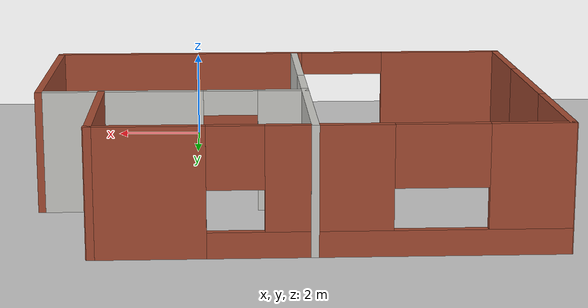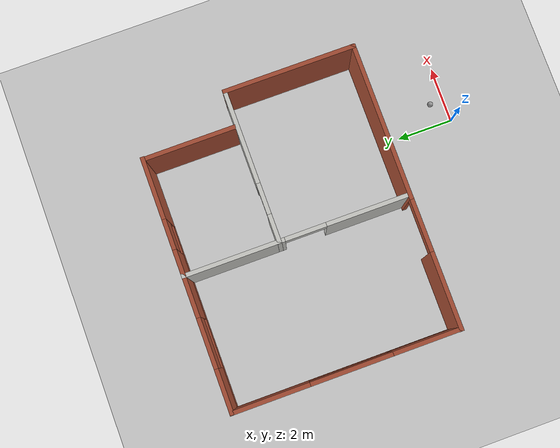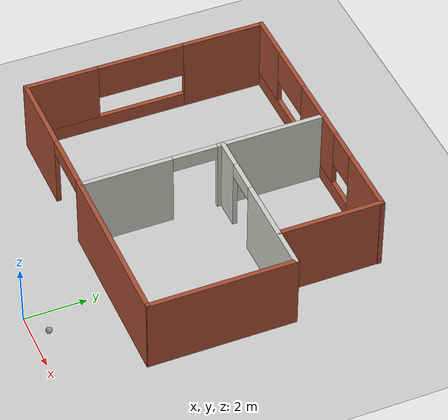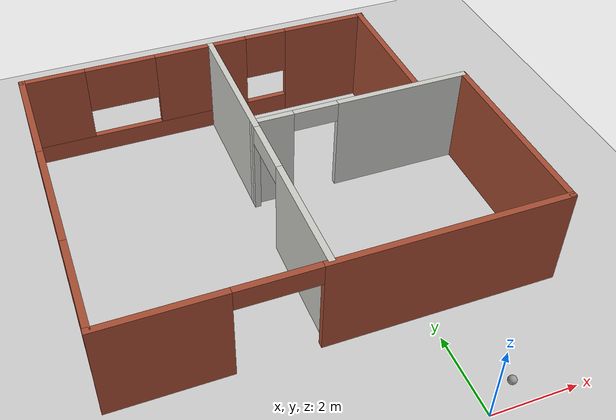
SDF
<sdf version="1.6">
 <world name="default">
  <model name="ground_plane">
   <static>1</static>
   <link name="link">
    <collision name="collision">
     <geometry><plane><normal>0 0 1</normal><size>100 100</size></plane></geometry>
     <surface><friction><ode><mu>100</mu><mu2>50</mu2></ode></friction></surface>
    </collision>
    <visual name="visual">
     <cast_shadows>0</cast_shadows>
     <geometry><plane><normal>0 0 1</normal><size>100 100</size></plane></geometry>
     <material>
      <script><uri>file://media/materials/scripts/gazebo.material</uri><name>Gazebo/Grey</name></script>
     </material>
    </visual>
   </link>
  </model>
  <light name="sun" type="directional">
   <pose>0 0 10 0 -0 0</pose>
   <diffuse>0.8 0.8 0.8 1</diffuse>
   <specular>0.2 0.2 0.2 1</specular>
   <attenuation>
    <range>1000</range>
    <constant>0.9</constant>
    <linear>0.01</linear>
    <quadratic>0.001</quadratic>
   </attenuation>
   <direction>-0.5 0.1 -0.9</direction>
  </light>
  <gravity>0 0 -9.8</gravity>
  <magnetic_field>6e-06 2.3e-05 -4.2e-05</magnetic_field>
  <atmosphere type="adiabatic"/>
  <physics name="default_physics" default="0" type="ode">
   <max_step_size>0.001</max_step_size>
   <real_time_factor>1</real_time_factor>
   <real_time_update_rate>1000</real_time_update_rate>
  </physics>
  <scene><ambient>0.4 0.4 0.4 1</ambient><background>0.7 0.7 0.7 1</background><shadows>1</shadows></scene>
  <spherical_coordinates>
   <surface_model>EARTH_WGS84</surface_model>
   <latitude_deg>0</latitude_deg>
   <longitude_deg>0</longitude_deg>
   <elevation>0</elevation>
   <heading_deg>0</heading_deg>
  </spherical_coordinates>
  <model name="Bungalow">
   <pose>-1.94353 6.69554 0 0 -0 0</pose>
   <link name="Wall_13">
    <pose>-0.007662 -3.96948 0 0 -0 0</pose>
    <visual name="Wall_13_Visual_0">
     <pose>-3.74203 0 1.25 0 -0 0</pose>
     <geometry><box><size>2.76594 0.15 2.5</size></box></geometry>
     <material>
      <script><uri>file://media/materials/scripts/gazebo.material</uri><name>Gazebo/Bricks</name></script>
      <ambient>1 1 1 1</ambient>
     </material>
     <meta><layer>0</layer></meta>
    </visual>
    <collision name="Wall_13_Collision_0">
     <geometry><box><size>2.76594 0.15 2.5</size></box></geometry>
     <pose>-3.74203 0 1.25 0 -0 0</pose>
    </collision>
    <visual name="Wall_13_Visual_1">
     <pose>2.31237 0 1.25 0 -0 0</pose>
     <geometry><box><size>5.62525 0.15 2.5</size></box></geometry>
     <material>
      <script><uri>file://media/materials/scripts/gazebo.material</uri><name>Gazebo/Bricks</name></script>
      <ambient>1 1 1 1</ambient>
     </material>
     <meta><layer>0</layer></meta>
    </visual>
    <collision name="Wall_13_Collision_1">
     <geometry><box><size>5.62525 0.15 2.5</size></box></geometry>
     <pose>2.31237 0 1.25 0 -0 0</pose>
    </collision>
    <visual name="Wall_13_Visual_2">
     <pose>-1.42966 0 2.25 0 -0 0</pose>
     <geometry><box><size>1.85881 0.15 0.5</size></box></geometry>
     <material>
      <script><uri>file://media/materials/scripts/gazebo.material</uri><name>Gazebo/Bricks</name></script>
      <ambient>1 1 1 1</ambient>
     </material>
     <meta><layer>0</layer></meta>
    </visual>
    <collision name="Wall_13_Collision_2">
     <geometry><box><size>1.85881 0.15 0.5</size></box></geometry>
     <pose>-1.42966 0 2.25 0 -0 0</pose>
    </collision>
   </link>
   <link name="Wall_16">
    <collision name="Wall_16_Collision">
     <geometry><box><size>3.42399 0.15 2.5</size></box></geometry>
     <pose>0 0 1.25 0 -0 0</pose>
    </collision>
    <visual name="Wall_16_Visual">
     <pose>0 0 1.25 0 -0 0</pose>
     <geometry><box><size>3.42399 0.15 2.5</size></box></geometry>
     <material>
      <script><uri>file://media/materials/scripts/gazebo.material</uri><name>Gazebo/Bricks</name></script>
      <ambient>1 1 1 1</ambient>
     </material>
     <meta><layer>0</layer></meta>
    </visual>
    <pose>3.7988 2.32833 0 0 -0 1.5708</pose>
   </link>
   <link name="Wall_17">
    <pose>-0.610992 3.96531 0 0 -0 3.14159</pose>
    <visual name="Wall_17_Visual_0">
     <pose>-3.39009 0 1.25 0 -0 0</pose>
     <geometry><box><size>2.21983 0.15 2.5</size></box></geometry>
     <material>
      <script><uri>file://media/materials/scripts/gazebo.material</uri><name>Gazebo/Bricks</name></script>
      <ambient>1 1 1 1</ambient>
     </material>
     <meta><layer>0</layer></meta>
    </visual>
    <collision name="Wall_17_Collision_0">
     <geometry><box><size>2.21983 0.15 2.5</size></box></geometry>
     <pose>-3.39009 0 1.25 0 -0 0</pose>
    </collision>
    <visual name="Wall_17_Visual_1">
     <pose>1.10991 0 0.25 0 -0 0</pose>
     <geometry><box><size>6.78017 0.15 0.5</size></box></geometry>
     <material>
      <script><uri>file://media/materials/scripts/gazebo.material</uri><name>Gazebo/Bricks</name></script>
      <ambient>1 1 1 1</ambient>
     </material>
     <meta><layer>0</layer></meta>
    </visual>
    <collision name="Wall_17_Collision_1">
     <geometry><box><size>6.78017 0.15 0.5</size></box></geometry>
     <pose>1.10991 0 0.25 0 -0 0</pose>
    </collision>
    <visual name="Wall_17_Visual_2">
     <pose>-0.017098 0 1.5 0 -0 0</pose>
     <geometry><box><size>2.37863 0.15 2</size></box></geometry>
     <material>
      <script><uri>file://media/materials/scripts/gazebo.material</uri><name>Gazebo/Bricks</name></script>
      <ambient>1 1 1 1</ambient>
     </material>
     <meta><layer>0</layer></meta>
    </visual>
    <collision name="Wall_17_Collision_2">
     <geometry><box><size>2.37863 0.15 2</size></box></geometry>
     <pose>-0.017098 0 1.5 0 -0 0</pose>
    </collision>
    <visual name="Wall_17_Visual_3">
     <pose>3.71518 0 1.5 0 -0 0</pose>
     <geometry><box><size>1.56963 0.15 2</size></box></geometry>
     <material>
      <script><uri>file://media/materials/scripts/gazebo.material</uri><name>Gazebo/Bricks</name></script>
      <ambient>1 1 1 1</ambient>
     </material>
     <meta><layer>0</layer></meta>
    </visual>
    <collision name="Wall_17_Collision_3">
     <geometry><box><size>1.56963 0.15 2</size></box></geometry>
     <pose>3.71518 0 1.5 0 -0 0</pose>
    </collision>
    <visual name="Wall_17_Visual_4">
     <pose>-1.74329 0 1.9 0 -0 0</pose>
     <geometry><box><size>1.07376 0.15 1.2</size></box></geometry>
     <material>
      <script><uri>file://media/materials/scripts/gazebo.material</uri><name>Gazebo/Bricks</name></script>
      <ambient>1 1 1 1</ambient>
     </material>
     <meta><layer>0</layer></meta>
    </visual>
    <collision name="Wall_17_Collision_4">
     <geometry><box><size>1.07376 0.15 1.2</size></box></geometry>
     <pose>-1.74329 0 1.9 0 -0 0</pose>
    </collision>
    <visual name="Wall_17_Visual_5">
     <pose>2.05129 0 1.9 0 -0 0</pose>
     <geometry><box><size>1.75815 0.15 1.2</size></box></geometry>
     <material>
      <script><uri>file://media/materials/scripts/gazebo.material</uri><name>Gazebo/Bricks</name></script>
      <ambient>1 1 1 1</ambient>
     </material>
     <meta><layer>0</layer></meta>
    </visual>
    <collision name="Wall_17_Collision_5">
     <geometry><box><size>1.75815 0.15 1.2</size></box></geometry>
     <pose>2.05129 0 1.9 0 -0 0</pose>
    </collision>
   </link>
   <link name="Wall_18">
    <pose>-5.0512 0.032703 0 0 0 -1.5708</pose>
    <visual name="Wall_18_Visual_0">
     <pose>-2.6209 0 1.25 0 -0 0</pose>
     <geometry><box><size>2.77342 0.15 2.5</size></box></geometry>
     <material>
      <script><uri>file://media/materials/scripts/gazebo.material</uri><name>Gazebo/Bricks</name></script>
      <ambient>1 1 1 1</ambient>
     </material>
     <meta><layer>0</layer></meta>
    </visual>
    <collision name="Wall_18_Collision_0">
     <geometry><box><size>2.77342 0.15 2.5</size></box></geometry>
     <pose>-2.6209 0 1.25 0 -0 0</pose>
    </collision>
    <visual name="Wall_18_Visual_1">
     <pose>1.38671 0 0.25 0 -0 0</pose>
     <geometry><box><size>5.24181 0.15 0.5</size></box></geometry>
     <material>
      <script><uri>file://media/materials/scripts/gazebo.material</uri><name>Gazebo/Bricks</name></script>
      <ambient>1 1 1 1</ambient>
     </material>
     <meta><layer>0</layer></meta>
    </visual>
    <collision name="Wall_18_Collision_1">
     <geometry><box><size>5.24181 0.15 0.5</size></box></geometry>
     <pose>1.38671 0 0.25 0 -0 0</pose>
    </collision>
    <visual name="Wall_18_Visual_2">
     <pose>2.8209 0 1.5 0 -0 0</pose>
     <geometry><box><size>2.37342 0.15 2</size></box></geometry>
     <material>
      <script><uri>file://media/materials/scripts/gazebo.material</uri><name>Gazebo/Bricks</name></script>
      <ambient>1 1 1 1</ambient>
     </material>
     <meta><layer>0</layer></meta>
    </visual>
    <collision name="Wall_18_Collision_2">
     <geometry><box><size>2.37342 0.15 2</size></box></geometry>
     <pose>2.8209 0 1.5 0 -0 0</pose>
    </collision>
    <visual name="Wall_18_Visual_3">
     <pose>0.199999 0 1.9 0 -0 0</pose>
     <geometry><box><size>2.86839 0.15 1.2</size></box></geometry>
     <material>
      <script><uri>file://media/materials/scripts/gazebo.material</uri><name>Gazebo/Bricks</name></script>
      <ambient>1 1 1 1</ambient>
     </material>
     <meta><layer>0</layer></meta>
    </visual>
    <collision name="Wall_18_Collision_3">
     <geometry><box><size>2.86839 0.15 1.2</size></box></geometry>
     <pose>0.199999 0 1.9 0 -0 0</pose>
    </collision>
   </link>
   <link name="Wall_20">
    <pose>-0.327741 0.044484 0 0 0 -1.5708</pose>
    <visual name="Wall_20_Visual_0">
     <pose>-2.19615 0 1.25 0 -0 0</pose>
     <geometry><box><size>3.60771 0.15 2.5</size></box></geometry>
     <material>
      <script><uri>file://media/materials/scripts/gazebo.material</uri><name>Gazebo/CeilingTiled</name></script>
      <ambient>1 1 1 1</ambient>
     </material>
     <meta><layer>0</layer></meta>
    </visual>
    <collision name="Wall_20_Collision_0">
     <geometry><box><size>3.60771 0.15 2.5</size></box></geometry>
     <pose>-2.19615 0 1.25 0 -0 0</pose>
    </collision>
    <visual name="Wall_20_Visual_1">
     <pose>2.53158 0 1.25 0 -0 0</pose>
     <geometry><box><size>2.93684 0.15 2.5</size></box></geometry>
     <material>
      <script><uri>file://media/materials/scripts/gazebo.material</uri><name>Gazebo/CeilingTiled</name></script>
      <ambient>1 1 1 1</ambient>
     </material>
     <meta><layer>0</layer></meta>
    </visual>
    <collision name="Wall_20_Collision_1">
     <geometry><box><size>2.93684 0.15 2.5</size></box></geometry>
     <pose>2.53158 0 1.25 0 -0 0</pose>
    </collision>
    <visual name="Wall_20_Visual_2">
     <pose>0.335434 0 2.25 0 -0 0</pose>
     <geometry><box><size>1.45545 0.15 0.5</size></box></geometry>
     <material>
      <script><uri>file://media/materials/scripts/gazebo.material</uri><name>Gazebo/CeilingTiled</name></script>
      <ambient>1 1 1 1</ambient>
     </material>
     <meta><layer>0</layer></meta>
    </visual>
    <collision name="Wall_20_Collision_2">
     <geometry><box><size>1.45545 0.15 0.5</size></box></geometry>
     <pose>0.335434 0 2.25 0 -0 0</pose>
    </collision>
   </link>
   <link name="Wall_24">
    <pose>2.35486 0.633863 0 0 -0 0</pose>
    <visual name="Wall_24_Visual_0">
     <pose>-2.23848 0 1.25 0 -0 0</pose>
     <geometry><box><size>1.03824 0.15 2.5</size></box></geometry>
     <material>
      <script><uri>file://media/materials/scripts/gazebo.material</uri><name>Gazebo/CeilingTiled</name></script>
      <ambient>1 1 1 1</ambient>
     </material>
     <meta><layer>0</layer></meta>
    </visual>
    <collision name="Wall_24_Collision_0">
     <geometry><box><size>1.03824 0.15 2.5</size></box></geometry>
     <pose>-2.23848 0 1.25 0 -0 0</pose>
    </collision>
    <visual name="Wall_24_Visual_1">
     <pose>1.06969 0 1.25 0 -0 0</pose>
     <geometry><box><size>3.37583 0.15 2.5</size></box></geometry>
     <material>
      <script><uri>file://media/materials/scripts/gazebo.material</uri><name>Gazebo/CeilingTiled</name></script>
      <ambient>1 1 1 1</ambient>
     </material>
     <meta><layer>0</layer></meta>
    </visual>
    <collision name="Wall_24_Collision_1">
     <geometry><box><size>3.37583 0.15 2.5</size></box></geometry>
     <pose>1.06969 0 1.25 0 -0 0</pose>
    </collision>
    <visual name="Wall_24_Visual_2">
     <pose>-1.1688 0 2.25 0 -0 0</pose>
     <geometry><box><size>1.10114 0.15 0.5</size></box></geometry>
     <material>
      <script><uri>file://media/materials/scripts/gazebo.material</uri><name>Gazebo/CeilingTiled</name></script>
      <ambient>1 1 1 1</ambient>
     </material>
     <meta><layer>0</layer></meta>
    </visual>
    <collision name="Wall_24_Collision_2">
     <geometry><box><size>1.10114 0.15 0.5</size></box></geometry>
     <pose>-1.1688 0 2.25 0 -0 0</pose>
    </collision>
   </link>
   <link name="Wall_29">
    <collision name="Wall_29_Collision">
     <geometry><box><size>4.73035 0.15 2.5</size></box></geometry>
     <pose>0 0 1.25 0 -0 0</pose>
    </collision>
    <visual name="Wall_29_Visual">
     <pose>0 0 1.25 0 -0 0</pose>
     <geometry><box><size>4.73035 0.15 2.5</size></box></geometry>
     <material>
      <script><uri>file://media/materials/scripts/gazebo.material</uri><name>Gazebo/Bricks</name></script>
      <ambient>0.921569 0.807843 0.615686 1</ambient>
     </material>
     <meta><layer>0</layer></meta>
    </visual>
    <pose>5.05513 -1.65608 0 0 0 -1.57187</pose>
   </link>
   <static>1</static>
  </model>
  <model name="my_ball">
   <link name="link_0">
    <inertial>
     <mass>1</mass>
     <inertia><ixx>0.1</ixx><ixy>0</ixy><ixz>0</ixz><iyy>0.1</iyy><iyz>0</iyz><izz>0.1</izz></inertia>
    </inertial>
    <visual name="visual">
     <geometry><sphere><radius>0.1</radius></sphere></geometry>
     <material>
      <lighting>1</lighting>
      <script><uri>file://media/materials/scripts/gazebo.material</uri><name>Gazebo/Grey</name></script>
      <shader type="pixel"><normal_map>__default__</normal_map></shader>
      <ambient>1 1 1 1</ambient>
      <diffuse>1 1 1 1</diffuse>
      <specular>1 1 1 1</specular>
      <emissive>1 1 1 1</emissive>
     </material>
    </visual>
    <collision name="collision">
     <geometry><sphere><radius>0.1</radius></sphere></geometry>
     <surface>
      <friction>
       <ode><mu>1</mu><mu2>1</mu2><fdir1>0 0 0</fdir1><slip1>0</slip1><slip2>0</slip2></ode>
       <torsional>
        <coefficient>1</coefficient>
        <patch_radius>0</patch_radius>
        <surface_radius>0</surface_radius>
        <use_patch_radius>1</use_patch_radius>
        <ode><slip>0</slip></ode>
       </torsional>
      </friction>
      <bounce><restitution_coefficient>0</restitution_coefficient><threshold>1e+06</threshold></bounce>
      <contact>
       <collide_without_contact>0</collide_without_contact>
       <collide_without_contact_bitmask>1</collide_without_contact_bitmask>
       <collide_bitmask>1</collide_bitmask>
       <ode>
        <soft_cfm>0</soft_cfm>
        <soft_erp>0.2</soft_erp>
        <kp>1e+13</kp>
        <kd>1</kd>
        <max_vel>0.01</max_vel>
        <min_depth>0</min_depth>
       </ode>
       <bullet>
        <split_impulse>1</split_impulse>
        <split_impulse_penetration_threshold>-0.01</split_impulse_penetration_threshold>
        <soft_cfm>0</soft_cfm>
        <soft_erp>0.2</soft_erp>
        <kp>1e+13</kp>
        <kd>1</kd>
       </bullet>
      </contact>
     </surface>
    </collision>
   </link>
   <static>0</static>
   <pose>0.801314 0.515524 0.1 0 -0 0</pose>
  </model>
 </world>
</sdf>
